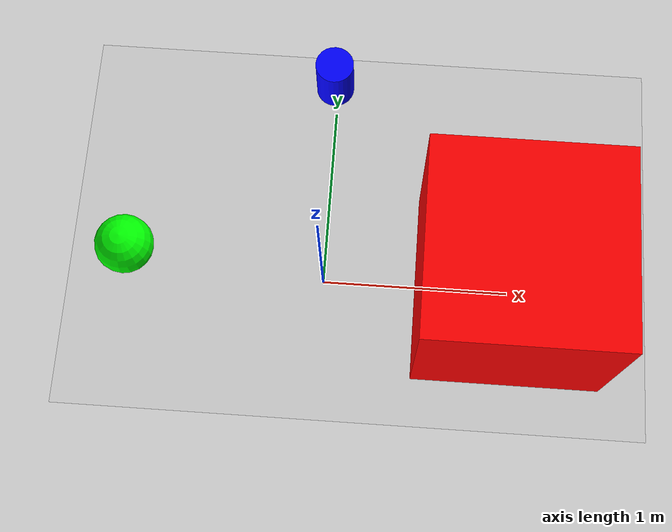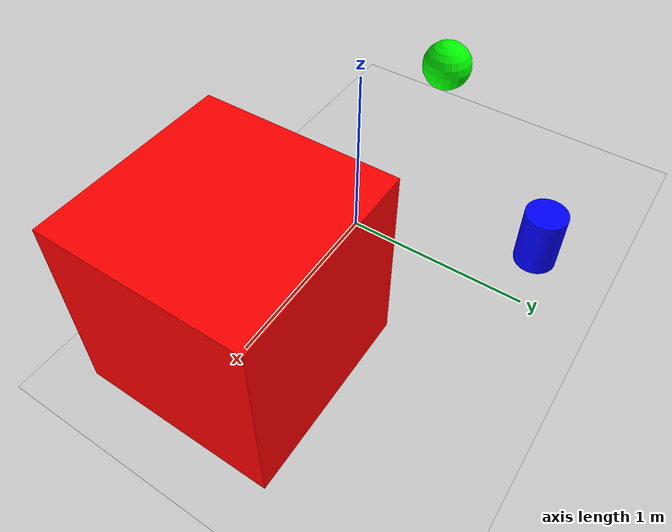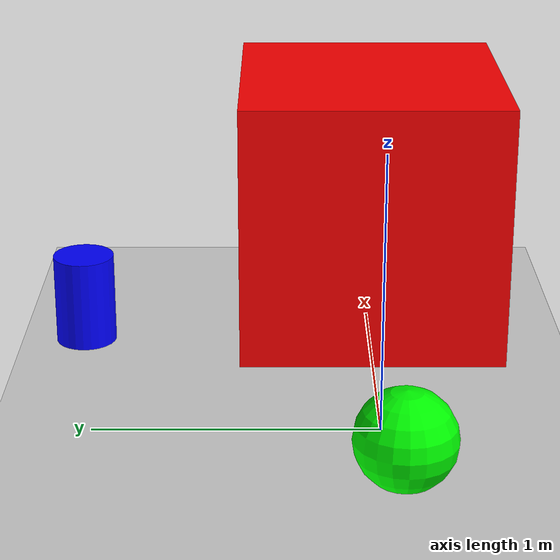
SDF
<?xml version="1.0" ?>
<sdf version="1.6">
  <world name="vla_world">
    <include>
      <uri>model://ground_plane</uri>
    </include>
    <include>
      <uri>model://sun</uri>
    </include>
    <scene>
      <ambient>0.4 0.4 0.4 1</ambient>
      <background>0.7 0.7 0.7 1</background>
      <shadows>true</shadows>
    </scene>

    <model name="red_box">
      <pose>1 0 0.5 0 0 0</pose>
      <link name="link">
        <visual>
          <geometry>
            <box>0.2 0.2 0.2</box>
          </geometry>
          <material>
            <ambient>1 0 0 1</ambient>
            <diffuse>1 0 0 1</diffuse>
          </material>
        </visual>
      </link>
    </model>

    <model name="blue_cylinder">
      <pose>0 1 0.5 0 0 0</pose>
      <link name="link">
        <visual>
          <geometry>
            <cylinder>
              <radius>0.1</radius>
              <length>0.3</length>
            </cylinder>
          </geometry>
          <material>
            <ambient>0 0 1 1</ambient>
            <diffuse>0 0 1 1</diffuse>
          </material>
        </visual>
      </link>
    </model>

    <model name="green_sphere">
      <pose>-1 0 0.5 0 0 0</pose>
      <link name="link">
        <visual>
          <geometry>
            <sphere>
              <radius>0.15</radius>
            </sphere>
          </geometry>
          <material>
            <ambient>0 1 0 1</ambient>
            <diffuse>0 1 0 1</diffuse>
          </material>
        </visual>
      </link>
    </model>

  </world>
</sdf>
